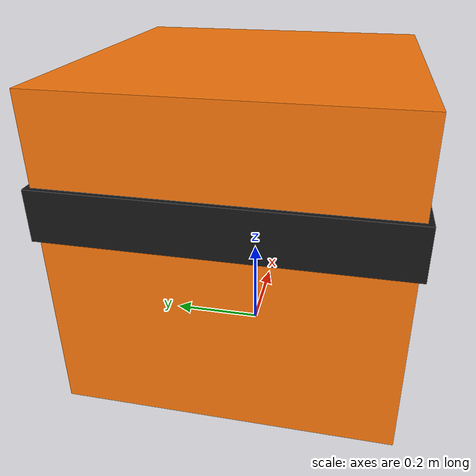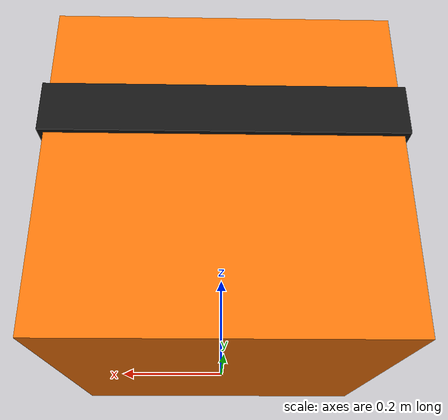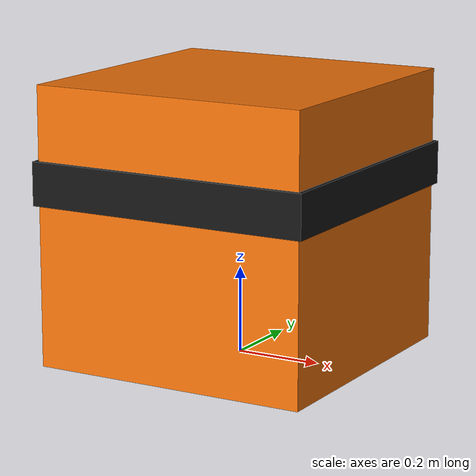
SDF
<?xml version="1.0"?>
<sdf version="1.9">
  <model name="dynamic_obstacle_1">
    <pose>0 0 0.32 0 0 0</pose>
    <link name="crate">
      <inertial><mass>18.0</mass><inertia><ixx>0.8</ixx><iyy>0.8</iyy><izz>0.8</izz></inertia></inertial>
      <collision name="collision"><geometry><box><size>0.65 0.65 0.64</size></box></geometry></collision>
      <visual name="body"><geometry><box><size>0.65 0.65 0.64</size></box></geometry>
        <material><ambient>0.95 0.45 0.04 1</ambient><diffuse>0.95 0.45 0.04 1</diffuse></material></visual>
      <visual name="hazard_band"><pose>0 0 0.10 0 0 0</pose><geometry><box><size>0.67 0.67 0.10</size></box></geometry>
        <material><ambient>0.08 0.08 0.08 1</ambient><diffuse>0.08 0.08 0.08 1</diffuse></material></visual>
    </link>
  </model>
</sdf>
